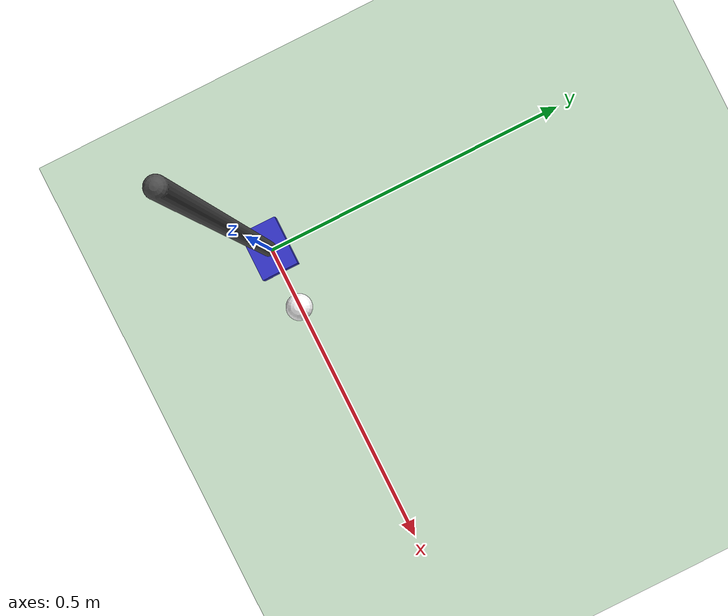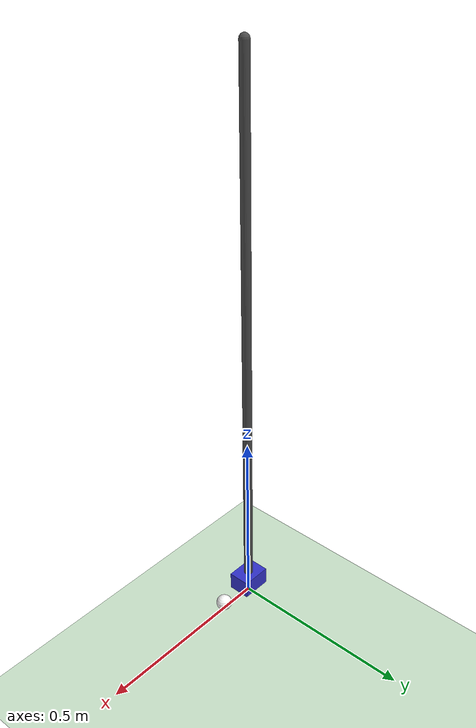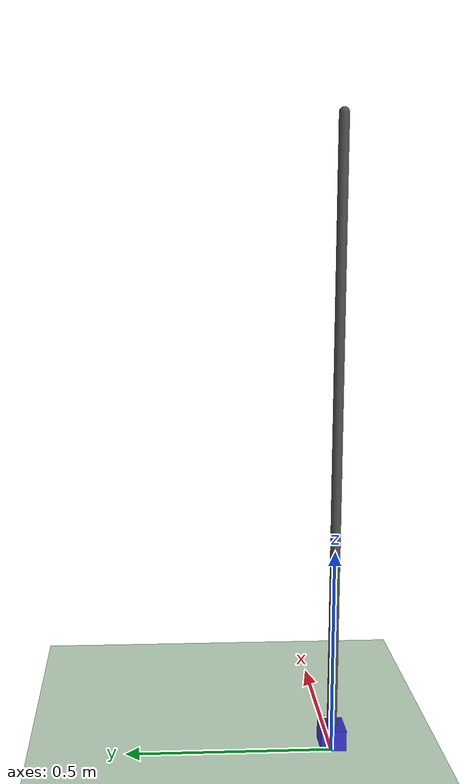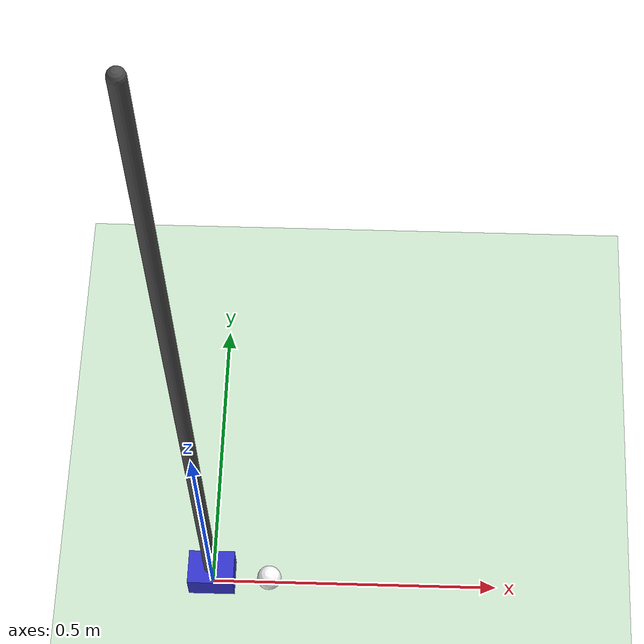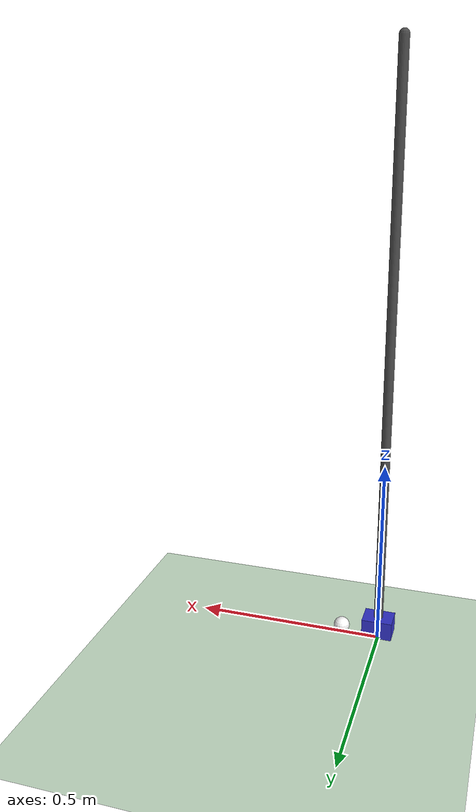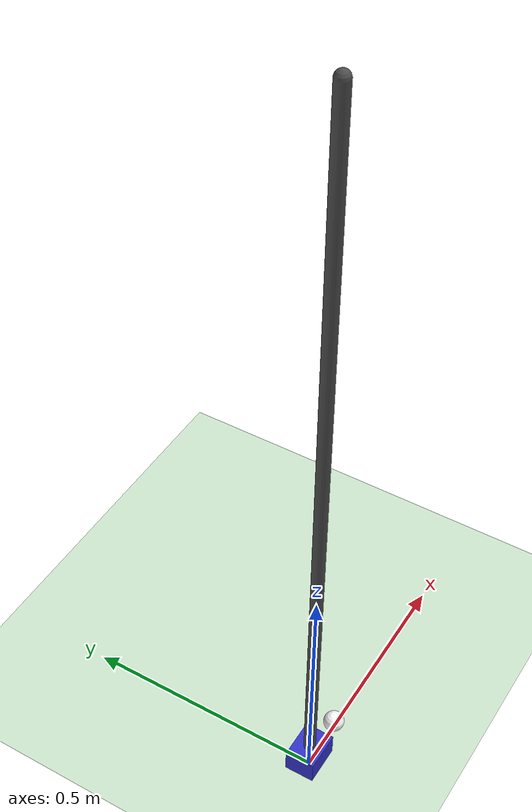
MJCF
<mujoco model="pendulum_ball">
  <option gravity="0 0 -9.81" timestep="0.0005"/>

  <default>
    <!-- Contactos um pouco rígidos para a pancada ser "seca" -->
    <geom solref="0.002 1" solimp="0.9 0.95 0.001"/>
  </default>

  <worldbody>
    <light pos="0 0 3" dir="0 0 -1"/>
    <geom name="floor" type="plane" size="10 10 0.1" rgba="0.8 0.9 0.8 1" friction="0.8 0.005 0.0001"/>

    <body name="pivot" pos="0 0 1.5">
      <joint name="hinge" type="hinge" axis="0 1 0" damping="0.01"/>
      <geom name="rod" type="capsule" fromto="0 0 0  0 0 -1.44" size="0.012" mass="0.1" rgba="0.3 0.3 0.3 1"/>
      <!-- "Cabeça do taco": massa maior na ponta -->
      <geom name="head" type="box" pos="0 0 -1.46" size="0.04 0.03 0.025" mass="0.25" rgba="0.2 0.2 0.8 1"/>
    </body>

    <!-- Bola de golfe: 45.9 g, raio 21.3 mm, pousada no chão em frente ao pêndulo -->
    <body name="ball" pos="0.1 0 0.0213">
      <freejoint name="ball_free"/>
      <geom name="ball_geom" type="sphere" size="0.0213" mass="0.0459" rgba="1 1 1 1"/>
    </body>
  </worldbody>
</mujoco>
